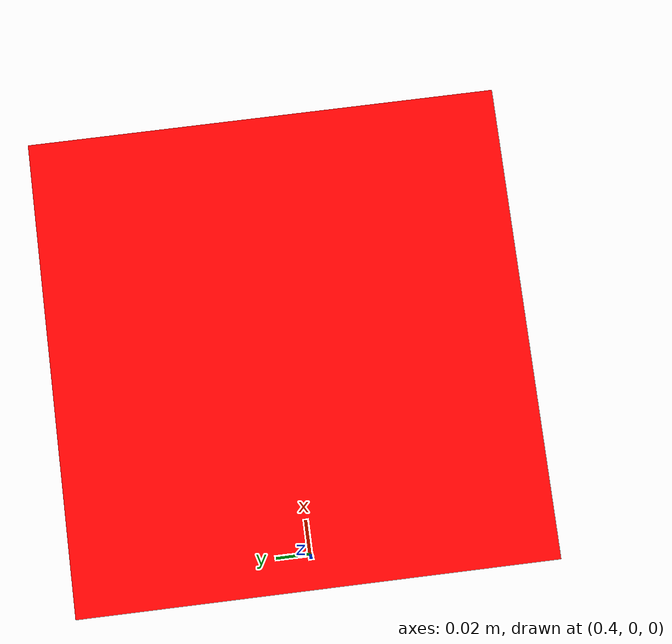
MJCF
<mujoco model="red_box">
  <compiler angle="radian" />
  <asset>
    <material name="red_material" rgba="1 0 0 1"/>
  </asset>
  <worldbody>
    <body name="box_body" pos="0.5 0 0.1"> <!-- Initial position above the ground -->
      <freejoint/> <!-- Allows the box to be manipulated freely -->
      <geom name="box_visual" type="box" size="0.09 0.09 0.09" material="red_material"/> <!-- 20cm box -->
      <inertial mass="1" pos="0 0 0" diaginertia="0.00166667 0.00166667 0.00166667"/>
    </body>
  </worldbody>
  <default>
    <geom solref="0.02 1" solimp="0.9 0.99 0.003"/>
  </default>
  <option timestep="0.002"/>
</mujoco>
